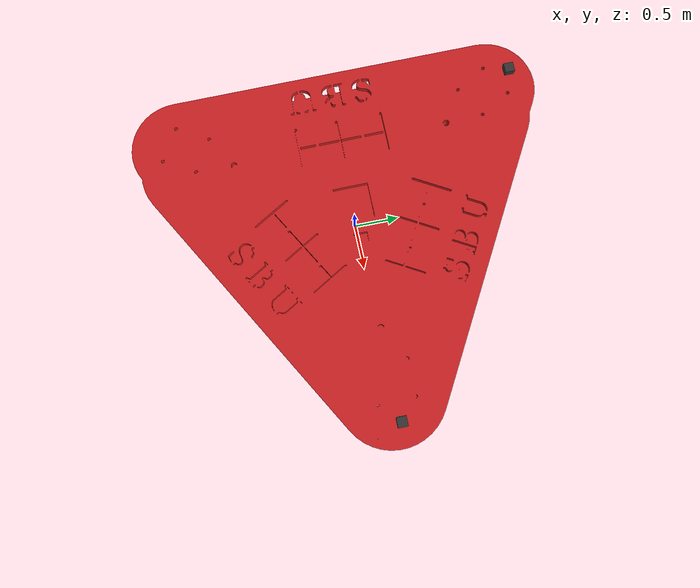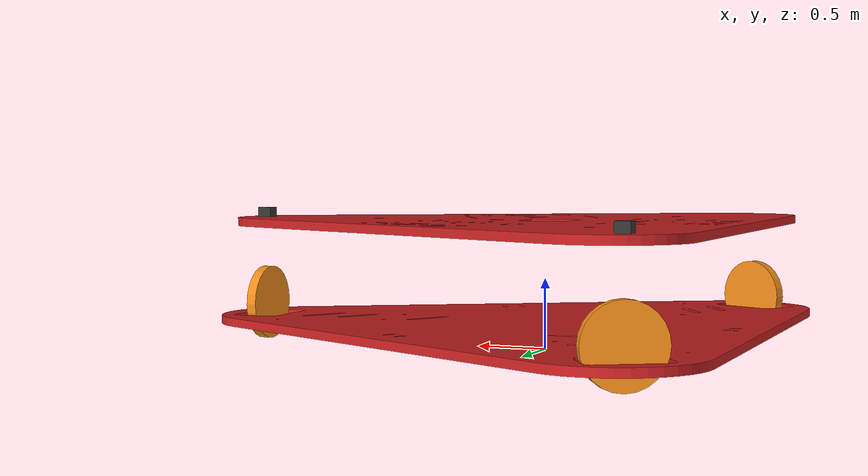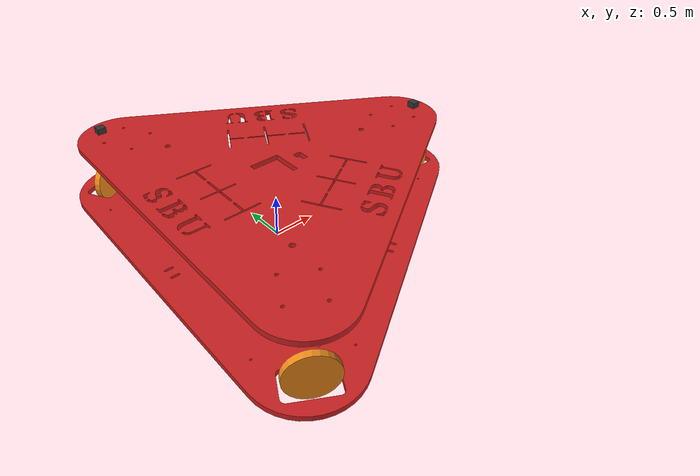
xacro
<?xml version="1.0"?>
<robot xmlns:xacro="http://www.ros.org/wiki/xacro" name="robot">

 <xacro:property name="rob_scale" value="0.1"/>

  <material name="black">
    <color rgba="0.0 0.0 0.0 1.0"/>
  </material>
  <material name="blue">
    <color rgba="0.203125 0.23828125 0.28515625 1.0"/>
  </material>
  <material name="green">
    <color rgba="0.0 0.8 0.0 1.0"/>
  </material>
  <material name="grey">
    <color rgba="0.2 0.2 0.2 1.0"/>
  </material>
  <material name="orange">
    <color rgba="1.0 0.423529411765 0.0392156862745 1.0"/>
  </material>
  <material name="brown">
    <color rgba="0.870588235294 0.811764705882 0.764705882353 1.0"/>
  </material>
  <material name="red">
    <color rgba="0.80078125 0.12890625 0.1328125 1.0"/>
  </material>
  <material name="white">
    <color rgba="1.0 1.0 1.0 1.0"/>
  </material>

    <gazebo reference="link_chassis">
    <material>Gazebo/Orange</material>
  </gazebo>
  <gazebo reference="link_left_wheel">
    <material>Gazebo/Orange</material>
  </gazebo>
  <gazebo reference="link_right_wheel">
    <material>Gazebo/Orange</material>
  </gazebo>
  <gazebo reference="link_left2_wheel">
    <material>Gazebo/Orange</material>
  </gazebo>
  <gazebo reference="camera_link">
    <material>Gazebo/Blue</material>
  </gazebo>
    <gazebo reference="sonar_link">
    <material>Gazebo/Black</material>
  </gazebo>

  <gazebo>
  <plugin name="gazebo_ros_control" filename="libgazebo_ros_control.so">
  <robotNamespace>/robot</robotNamespace>
  </plugin>
</gazebo>

  <gazebo>
    <plugin filename="libgazebo_ros_diff_drive.so" name="differential_drive_controller">
      <alwaysOn>true</alwaysOn>
      <updateRate>20</updateRate>
      <leftJoint>joint_left_wheel</leftJoint>
      <rightJoint>joint_right_wheel</rightJoint>
      <wheelSeparation>0.4</wheelSeparation>
      <wheelDiameter>0.2</wheelDiameter>
      <torque>0.1</torque>
      <commandTopic>cmd_vel</commandTopic>
      <odometryTopic>odom</odometryTopic>
      <odometryFrame>odom</odometryFrame>
      <robotBaseFrame>link_chassis</robotBaseFrame>
    </plugin>
  </gazebo>

  <gazebo reference="sensor_laser">
    <sensor type="ray" name="head_hokuyo_sensor">
      <pose>0 0 0 0 0 0</pose>
      <visualize>false</visualize>
      <update_rate>20</update_rate>
      <ray>
        <scan>
          <horizontal>
            <samples>720</samples>
            <resolution>1</resolution>
            <min_angle>-1.570796</min_angle>
            <max_angle>1.570796</max_angle>
          </horizontal>
        </scan>
        <range>
          <min>0.10</min>
          <max>10.0</max>
          <resolution>0.01</resolution>
        </range>
        <noise>
          <type>gaussian</type>
          <mean>0.0</mean>
          <stddev>0.01</stddev>
        </noise>
      </ray>
      <plugin name="gazebo_ros_head_hokuyo_controller" filename="libgazebo_ros_laser.so">
        <topicName>/m2wr/laser/scan</topicName>
        <frameName>sensor_laser</frameName>
      </plugin>
    </sensor>
  </gazebo>

   <!--Interial macros-->
  <xacro:macro name="cylinder_inertia" params="m r h">
    <inertial>
      <mass value="${m}"/>
      <inertia ixx="${m*(3*r*r+h*h)/12}" ixy = "0" ixz = "0" iyy="${m*(3*r*r+h*h)/12}" iyz = "0" izz="${m*r*r/2}"/>
    </inertial>
  </xacro:macro>

  <xacro:macro name="box_inertia" params="m w h d">
    <inertial>
      <mass value="${m}"/>
      <inertia ixx="${m / 12.0 * (d*d + h*h)}" ixy="0.0" ixz="0.0" iyy="${m / 12.0 * (w*w + h*h)}" iyz="0.0" izz="${m / 12.0 * (w*w + d*d)}"/>
    </inertial>
  </xacro:macro>

 <xacro:property name="M_PI" value="3.1415926535897931" />

  <xacro:macro name="camera_link" params="parent">

    <link name="camera_link">

      <collision>
        <origin xyz="0 0 0.43" rpy="0 0 0" />
        <geometry>
          <box size=".1 .1 .1" />

        </geometry>
      </collision>

      <visual>
        <origin xyz="0 0 0.43" rpy="0 0 0" />
        <geometry>
          <box size=".1 .1 .1" />
        </geometry>
        <material name="grey">
            <color rgba="0.2 0.2 0.2 1.0"/>
        </material>
      </visual>

	<xacro:box_inertia m="0.001" w="0.1" h="0.1" d="0.1"/>

    </link>

    <joint name="camera_joint" type="fixed">
        <parent link="${parent}"/>
        <child link="camera_link"/>
        <origin rpy="0 0 0" xyz="2.195 0 0.5"/>
        <axis xyz="1 0 0" />
    </joint>

    <gazebo reference="camera_link">
      <sensor type="camera" name="camera_camera_sensor">
        <update_rate>30.0</update_rate>
        <camera>
          <pose>0.035 0 0.078 0 0 0</pose>
          <horizontal_fov>${85 * M_PI/180.0}</horizontal_fov>
          <image>
            <format>R8G8B8</format>
            <width>1020</width>
            <height>1020</height>
          </image>
          <clip>
            <near>0.01</near>
            <far>100</far>
          </clip>
        </camera>

        <plugin name="camera_camera_controller" filename="libgazebo_ros_camera.so">
          <alwaysOn>true</alwaysOn>
          <updateRate>0.0</updateRate>
          <cameraName>robot_sensor/camera</cameraName>
          <imageTopicName>image_raw</imageTopicName>
          <cameraInfoTopicName>camera_info</cameraInfoTopicName>
          <frameName>camera_link</frameName>
          <hackBaseline>0.07</hackBaseline>
          <distortionK1>0.0</distortionK1>
          <distortionK2>0.0</distortionK2>
          <distortionK3>0.0</distortionK3>
          <distortionT1>0.0</distortionT1>
          <distortionT2>0.0</distortionT2>
        </plugin>
      </sensor>
    </gazebo>
  </xacro:macro>

  <xacro:macro name="sonar_link" params="parent">

   <link name="sonar_link">

      <collision>
        <origin xyz="0 0 0.43" rpy="0 0 0" />
        <geometry>
          <box size=".1 .1 .1" />

        </geometry>
      </collision>

      <visual>
        <origin xyz="0 0 0.43" rpy="0 0 0" />
        <geometry>
          <box size=".1 .1 .1" />
        </geometry>
        <material name="grey">
            <color rgba="0.2 0.2 0.2 1.0"/>
        </material>
      </visual>

	<xacro:box_inertia m="0.001" w="0.1" h="0.1" d="0.1"/>

  </link>

     <joint name="sonar_joint" type="fixed">
        <parent link="${parent}"/>
        <child link="sonar_link"/>
        <origin rpy="0 0 0" xyz="-1.10000 1.9 0.5"/>
        <axis xyz="1 0 0" />
    </joint>

      <gazebo reference="sonar_link">
	    <sensor type="ray" name="sonar">
	  <pose>0.25 0 0 0 0 0</pose>
	  <update_rate>5</update_rate>
	  <ray>
	    <scan>
	      <horizontal>
		<samples>5</samples>
		<resolution>1.0</resolution>
		<min_angle>-0.25</min_angle>
		<max_angle>0.25</max_angle>
	      </horizontal>
	      <vertical>
		<samples>5</samples>
		<resolution>1</resolution>
		<min_angle>-0.25</min_angle>
		<max_angle>0.25</max_angle>
	      </vertical>
	    </scan>
	    <range>
	      <min>0.01</min>
	      <max>0.75</max>
	      <resolution>0.01</resolution>
	    </range>
	  </ray>
	  <plugin filename="libgazebo_ros_range.so" name="gazebo_ros_range">
	    <gaussianNoise>0.005</gaussianNoise>
	    <alwaysOn>true</alwaysOn>
	    <updateRate>5</updateRate>
	    <topicName>sonar</topicName>
	    <frameName>sonar_link</frameName>
	    <fov>0.5</fov>
	    <radiation>ultrasound</radiation>
	  </plugin>
	</sensor>
    </gazebo>

  </xacro:macro>

<link name="base_link">
    <inertial>
      <mass value="20"/>
      <origin xyz="0 0 0.52" rpy="0 0 3.14"/>
      <inertia ixx="1.392949" ixy="0" ixz="-0.000108" iyy="1.392846" iyz="-0.000000" izz="-1.000000"/>
    </inertial>
	<visual>
	<origin xyz="0 0 0.52" rpy="0 0 3.14"/>
	<geometry>
        <mesh filename="package://rob_pkg/meshes/two_plate.dae "  />
      </geometry>
      <material name="red"/>
    </visual>
    <collision >
	<origin xyz="0 0 0.52" rpy="0 0 3.14"/>
      <geometry>
        <mesh filename="package://rob_pkg/meshes/two_plate.dae" />
      </geometry>
    </collision>

  </link>

  <xacro:camera_link parent="base_link" />

  <xacro:sonar_link parent="base_link" />

    <link name="link_right_wheel">
      <mass value="1"/>
      <origin rpy="0 1.570700 0" xyz="2.195 0 0.27"/>
    <collision name="link_right_wheel_collision">
	<geometry>
	 <cylinder length=".07" radius=".27" />
	</geometry>
    </collision>
    <visual name="link_right_wheel_visual">
	<geometry>
	 <cylinder length="0.07" radius="0.27" />
	</geometry>
    </visual>
    <xacro:cylinder_inertia m="1" r="0.27" h="0.07"/>
  </link>

  <joint name="joint_right_wheel" type="continuous">
	<origin rpy="0 1.570700 0" xyz="2.195 0 0.27"/>
    <child link="link_right_wheel"/>
    <parent link="base_link"/>
    <axis rpy="0 0 0" xyz="0 0 1"/>
  </joint>

<!-- Rear wheels transmission -->
<transmission name="transmission_right_wheel">
    <type>transmission_interface/SimpleTransmission</type>
    <joint name="joint_right_wheel">
        <hardwareInterface>hardware_interface/EffortJointInterface</hardwareInterface>
    </joint>
    <actuator name="motor_right_wheel">
        <hardwareInterface>hardware_interface/EffortJointInterface</hardwareInterface>
        <mechanicalReduction>1</mechanicalReduction>
    </actuator>
</transmission>

    <link name="link_left_wheel">
      <mass value="1"/>
      <origin rpy="0 1.570700 1.0472" xyz="-1.10000 -1.9 0.27"/>
    <collision name="link_left_wheel_collision">
	<geometry>
	 <cylinder length=".07" radius=".27" />
	</geometry>
    </collision>
    <visual name="link_left_wheel_visual">
	<geometry>
	 <cylinder length="0.07" radius="0.27" />
	</geometry>
    </visual>
    <xacro:cylinder_inertia m="1" r="0.27" h="0.07"/>
  </link>

  <joint name="joint_left_wheel" type="continuous">
  <origin rpy="0 1.570700 1.0472" xyz="-1.10000 -1.9 0.27"/>
    <child link="link_left_wheel"/>
    <parent link="base_link"/>
    <axis rpy="0 0 0" xyz="0 0 1"/>
  </joint>

<!-- Rear wheels transmission -->
<transmission name="transmission_left_wheel">
    <type>transmission_interface/SimpleTransmission</type>
    <joint name="joint_left_wheel">
        <hardwareInterface>hardware_interface/EffortJointInterface</hardwareInterface>
    </joint>
    <actuator name="motor_left_wheel">
        <hardwareInterface>hardware_interface/EffortJointInterface</hardwareInterface>
        <mechanicalReduction>1</mechanicalReduction>
    </actuator>
</transmission>

    <link name="link_left2_wheel">
      <mass value="1"/>
      <origin rpy="0 1.570700 2.0944" xyz="-1.10000 1.9 0.27"/>
    <collision name="link_left2_wheel_collision">
	<geometry>
	 <cylinder length=".07" radius=".27" />
	</geometry>
    </collision>
    <visual name="link_left2_wheel_visual">
	<geometry>
	 <cylinder length="0.07" radius="0.27" />
	</geometry>
    </visual>
    <xacro:cylinder_inertia m="1" r="0.27" h="0.07"/>
  </link>

  <joint name="joint_left2_wheel" type="continuous">
  <origin rpy="0 1.570700 2.0944" xyz="-1.10000 1.9 0.27"/>
    <child link="link_left2_wheel"/>
    <parent link="base_link"/>
    <axis rpy="0 0 0" xyz="0 0 1"/>
  </joint>

<!-- Rear wheels transmission -->
<transmission name="transmission_left2_wheel">
    <type>transmission_interface/SimpleTransmission</type>
    <joint name="joint_left2_wheel">
        <hardwareInterface>hardware_interface/EffortJointInterface</hardwareInterface>
    </joint>
    <actuator name="motor_left2_wheel">
        <hardwareInterface>hardware_interface/EffortJointInterface</hardwareInterface>
        <mechanicalReduction>1</mechanicalReduction>
    </actuator>
</transmission>

</robot>
